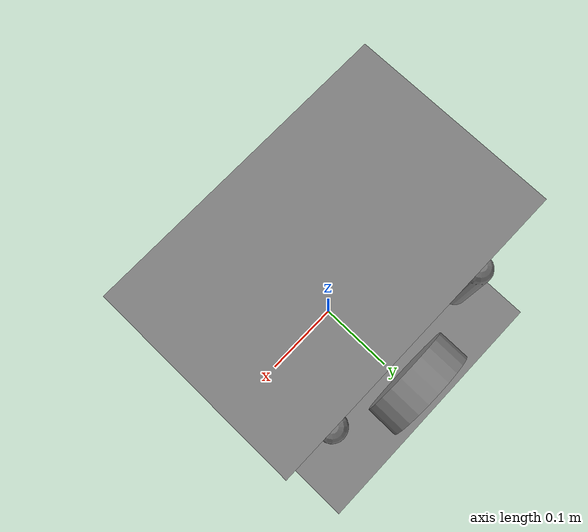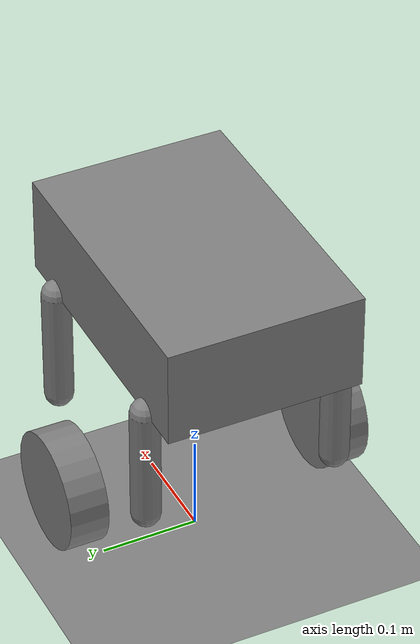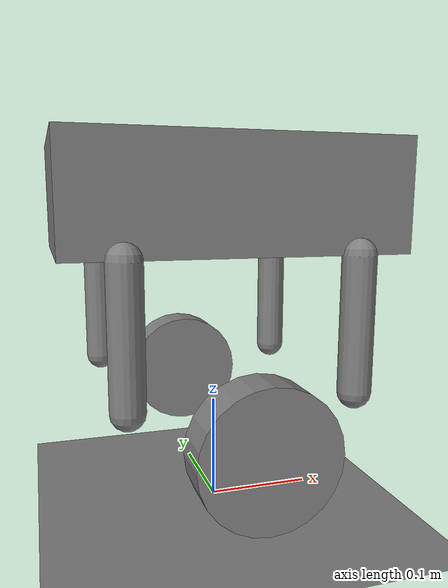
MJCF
<?xml version="1.0" ?>
<mujoco model="toy_wheeled_biped">
  <option timestep="0.002" gravity="0 0 -9.81"/>
  <worldbody>
    <light pos="0 0 3" dir="0 0 -1"/>
    <geom name="floor" type="plane" size="5 5 0.1" friction="1.0"/>
    <body name="torso" pos="0 0 0.30">
      <freejoint name="root"/>
      <geom name="torso_box" type="box" size="0.15 0.10 0.05" mass="4.0" friction="0.6"/>
      <!-- left leg: two hinge joints (front1/rear1) with capsule links -->
      <body name="left_front1" pos="0.10 -0.10 -0.05">
        <joint name="left_front1_joint" type="hinge" axis="0 1 0" range="-1.0 1.0"/>
        <geom type="capsule" fromto="0 0 0 0 0 -0.12" size="0.015" mass="0.3"/>
      </body>
      <body name="left_rear1" pos="-0.10 -0.10 -0.05">
        <joint name="left_rear1_joint" type="hinge" axis="0 1 0" range="-1.0 1.0"/>
        <geom type="capsule" fromto="0 0 0 0 0 -0.12" size="0.015" mass="0.3"/>
      </body>
      <body name="left_wheel" pos="0 -0.14 -0.20">
        <joint name="left_wheel_joint" type="hinge" axis="0 1 0"/>
        <geom name="left_wheel_geom" type="cylinder" size="0.06 0.02" quat="0.7071 0.7071 0 0"
              mass="0.4" friction="1.0"/>
      </body>
      <!-- right leg -->
      <body name="right_front1" pos="0.10 0.10 -0.05">
        <joint name="right_front1_joint" type="hinge" axis="0 1 0" range="-1.0 1.0"/>
        <geom type="capsule" fromto="0 0 0 0 0 -0.12" size="0.015" mass="0.3"/>
      </body>
      <body name="right_rear1" pos="-0.10 0.10 -0.05">
        <joint name="right_rear1_joint" type="hinge" axis="0 1 0" range="-1.0 1.0"/>
        <geom type="capsule" fromto="0 0 0 0 0 -0.12" size="0.015" mass="0.3"/>
      </body>
      <body name="right_wheel" pos="0 0.14 -0.20">
        <joint name="right_wheel_joint" type="hinge" axis="0 1 0"/>
        <geom name="right_wheel_geom" type="cylinder" size="0.06 0.02" quat="0.7071 0.7071 0 0"
              mass="0.4" friction="1.0"/>
      </body>
    </body>
  </worldbody>
  <actuator>
    <motor name="left_front1" joint="left_front1_joint" ctrlrange="-40 40"/>
    <motor name="right_front1" joint="right_front1_joint" ctrlrange="-40 40"/>
    <motor name="left_rear1" joint="left_rear1_joint" ctrlrange="-40 40"/>
    <motor name="right_rear1" joint="right_rear1_joint" ctrlrange="-40 40"/>
    <motor name="left_wheel" joint="left_wheel_joint" ctrlrange="-5 5"/>
    <motor name="right_wheel" joint="right_wheel_joint" ctrlrange="-5 5"/>
  </actuator>
</mujoco>
